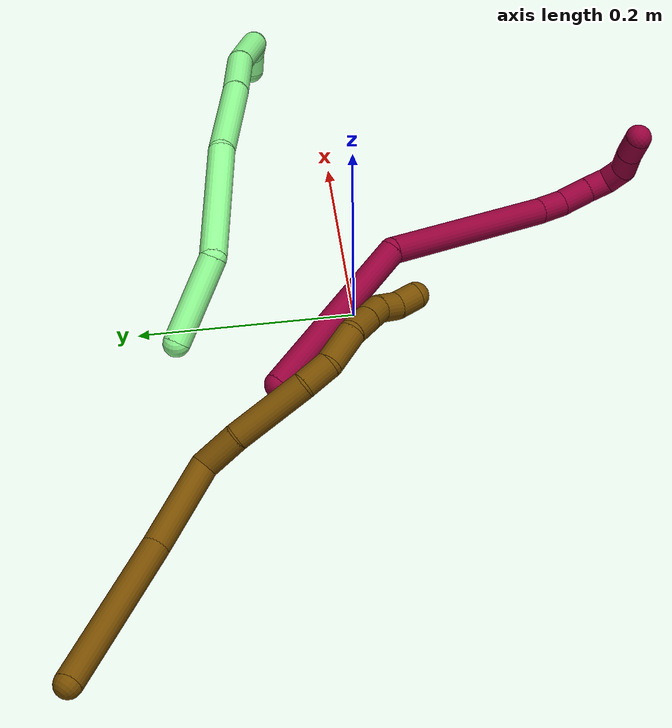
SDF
<sdf version="1.7">
 <world name="default">
  <model name="8">
   <static>0</static>
   <link name="8">
    <collision name="collision-cylinder-e_1_1_4">
     <pose>0.05096 -0.065647 -0.011742 1.74779 0.652495 0.768287</pose>
     <geometry><cylinder><radius>0.0125</radius><length>0.167861</length></cylinder></geometry>
     <surface>
      <friction><ode><mu>1.16</mu><mu2>1.16</mu2><slip1>0</slip1><slip2>0</slip2></ode></friction>
      <contact><ode><kp>1e+06</kp><kd>1</kd><max_vel>0</max_vel><min_depth>0.001</min_depth></ode></contact>
     </surface>
    </collision>
    <visual name="visual-cylinder-e_1_1_4">
     <pose>0.05096 -0.065647 -0.011742 1.74779 0.652495 0.768287</pose>
     <geometry><cylinder><radius>0.0125</radius><length>0.167861</length></cylinder></geometry>
     <material><ambient>0.584314 0 0.227451 1</ambient></material>
    </visual>
    <collision name="collision-cylinder-e_2_4_5">
     <pose>0.145843 -0.183978 -0.083026 2.41723 0.504723 1.1951</pose>
     <geometry><cylinder><radius>0.0125</radius><length>0.18166</length></cylinder></geometry>
     <surface>
      <friction><ode><mu>1.16</mu><mu2>1.16</mu2><slip1>0</slip1><slip2>0</slip2></ode></friction>
      <contact><ode><kp>1e+06</kp><kd>1</kd><max_vel>0</max_vel><min_depth>0.001</min_depth></ode></contact>
     </surface>
    </collision>
    <visual name="visual-cylinder-e_2_4_5">
     <pose>0.145843 -0.183978 -0.083026 2.41723 0.504723 1.1951</pose>
     <geometry><cylinder><radius>0.0125</radius><length>0.18166</length></cylinder></geometry>
     <material><ambient>0.584314 0 0.227451 1</ambient></material>
    </visual>
    <collision name="collision-cylinder-e_3_5_6">
     <pose>0.195927 -0.246258 -0.150803 2.27999 0.453513 0.930527</pose>
     <geometry><cylinder><radius>0.0125</radius><length>0.028132</length></cylinder></geometry>
     <surface>
      <friction><ode><mu>1.16</mu><mu2>1.16</mu2><slip1>0</slip1><slip2>0</slip2></ode></friction>
      <contact><ode><kp>1e+06</kp><kd>1</kd><max_vel>0</max_vel><min_depth>0.001</min_depth></ode></contact>
     </surface>
    </collision>
    <visual name="visual-cylinder-e_3_5_6">
     <pose>0.195927 -0.246258 -0.150803 2.27999 0.453513 0.930527</pose>
     <geometry><cylinder><radius>0.0125</radius><length>0.028132</length></cylinder></geometry>
     <material><ambient>0.584314 0 0.227451 1</ambient></material>
    </visual>
    <collision name="collision-cylinder-e_4_6_7">
     <pose>0.206439 -0.269144 -0.164651 1.97049 0.292786 0.437582</pose>
     <geometry><cylinder><radius>0.0125</radius><length>0.030137</length></cylinder></geometry>
     <surface>
      <friction><ode><mu>1.16</mu><mu2>1.16</mu2><slip1>0</slip1><slip2>0</slip2></ode></friction>
      <contact><ode><kp>1e+06</kp><kd>1</kd><max_vel>0</max_vel><min_depth>0.001</min_depth></ode></contact>
     </surface>
    </collision>
    <visual name="visual-cylinder-e_4_6_7">
     <pose>0.206439 -0.269144 -0.164651 1.97049 0.292786 0.437582</pose>
     <geometry><cylinder><radius>0.0125</radius><length>0.030137</length></cylinder></geometry>
     <material><ambient>0.584314 0 0.227451 1</ambient></material>
    </visual>
    <collision name="collision-cylinder-e_5_7_8">
     <pose>0.21296 -0.292111 -0.174124 1.95024 0.2055 0.301939</pose>
     <geometry><cylinder><radius>0.0125</radius><length>0.021285</length></cylinder></geometry>
     <surface>
      <friction><ode><mu>1.16</mu><mu2>1.16</mu2><slip1>0</slip1><slip2>0</slip2></ode></friction>
      <contact><ode><kp>1e+06</kp><kd>1</kd><max_vel>0</max_vel><min_depth>0.001</min_depth></ode></contact>
     </surface>
    </collision>
    <visual name="visual-cylinder-e_5_7_8">
     <pose>0.21296 -0.292111 -0.174124 1.95024 0.2055 0.301939</pose>
     <geometry><cylinder><radius>0.0125</radius><length>0.021285</length></cylinder></geometry>
     <material><ambient>0.584314 0 0.227451 1</ambient></material>
    </visual>
    <collision name="collision-cylinder-e_6_8_9">
     <pose>0.211809 -0.311875 -0.175955 1.3724 -0.312372 -0.256507</pose>
     <geometry><cylinder><radius>0.0125</radius><length>0.021623</length></cylinder></geometry>
     <surface>
      <friction><ode><mu>1.16</mu><mu2>1.16</mu2><slip1>0</slip1><slip2>0</slip2></ode></friction>
      <contact><ode><kp>1e+06</kp><kd>1</kd><max_vel>0</max_vel><min_depth>0.001</min_depth></ode></contact>
     </surface>
    </collision>
    <visual name="visual-cylinder-e_6_8_9">
     <pose>0.211809 -0.311875 -0.175955 1.3724 -0.312372 -0.256507</pose>
     <geometry><cylinder><radius>0.0125</radius><length>0.021623</length></cylinder></geometry>
     <material><ambient>0.584314 0 0.227451 1</ambient></material>
    </visual>
    <collision name="collision-cylinder-e_7_9_10">
     <pose>0.204605 -0.329963 -0.165808 0.778161 -0.328206 -0.135571</pose>
     <geometry><cylinder><radius>0.0125</radius><length>0.024085</length></cylinder></geometry>
     <surface>
      <friction><ode><mu>1.16</mu><mu2>1.16</mu2><slip1>0</slip1><slip2>0</slip2></ode></friction>
      <contact><ode><kp>1e+06</kp><kd>1</kd><max_vel>0</max_vel><min_depth>0.001</min_depth></ode></contact>
     </surface>
    </collision>
    <visual name="visual-cylinder-e_7_9_10">
     <pose>0.204605 -0.329963 -0.165808 0.778161 -0.328206 -0.135571</pose>
     <geometry><cylinder><radius>0.0125</radius><length>0.024085</length></cylinder></geometry>
     <material><ambient>0.584314 0 0.227451 1</ambient></material>
    </visual>
    <collision name="collision-cylinder-e_8_10_2">
     <pose>0.195885 -0.34679 -0.150093 0.860019 -0.393786 -0.182466</pose>
     <geometry><cylinder><radius>0.0125</radius><length>0.025218</length></cylinder></geometry>
     <surface>
      <friction><ode><mu>1.16</mu><mu2>1.16</mu2><slip1>0</slip1><slip2>0</slip2></ode></friction>
      <contact><ode><kp>1e+06</kp><kd>1</kd><max_vel>0</max_vel><min_depth>0.001</min_depth></ode></contact>
     </surface>
    </collision>
    <visual name="visual-cylinder-e_8_10_2">
     <pose>0.195885 -0.34679 -0.150093 0.860019 -0.393786 -0.182466</pose>
     <geometry><cylinder><radius>0.0125</radius><length>0.025218</length></cylinder></geometry>
     <material><ambient>0.584314 0 0.227451 1</ambient></material>
    </visual>
    <collision name="collision-sphere-2">
     <pose>0.191047 -0.355614 -0.142496 0 -0 0</pose>
     <geometry><sphere><radius>0.0125</radius></sphere></geometry>
     <surface>
      <friction><ode><mu>1.16</mu><mu2>1.16</mu2><slip1>0</slip1><slip2>0</slip2></ode></friction>
      <contact><ode><kp>1e+06</kp><kd>1</kd><max_vel>0</max_vel><min_depth>0.001</min_depth></ode></contact>
     </surface>
    </collision>
    <visual name="visual-sphere-2">
     <pose>0.191047 -0.355614 -0.142496 0 -0 0</pose>
     <geometry><sphere><radius>0.0125</radius></sphere></geometry>
     <material><ambient>0.584314 0 0.227451 1</ambient></material>
    </visual>
    <collision name="collision-sphere-10">
     <pose>0.200723 -0.337966 -0.15769 0 -0 0</pose>
     <geometry><sphere><radius>0.0125</radius></sphere></geometry>
     <surface>
      <friction><ode><mu>1.16</mu><mu2>1.16</mu2><slip1>0</slip1><slip2>0</slip2></ode></friction>
      <contact><ode><kp>1e+06</kp><kd>1</kd><max_vel>0</max_vel><min_depth>0.001</min_depth></ode></contact>
     </surface>
    </collision>
    <visual name="visual-sphere-10">
     <pose>0.200723 -0.337966 -0.15769 0 -0 0</pose>
     <geometry><sphere><radius>0.0125</radius></sphere></geometry>
     <material><ambient>0.584314 0 0.227451 1</ambient></material>
    </visual>
    <collision name="collision-sphere-9">
     <pose>0.208486 -0.321961 -0.173927 0 -0 0</pose>
     <geometry><sphere><radius>0.0125</radius></sphere></geometry>
     <surface>
      <friction><ode><mu>1.16</mu><mu2>1.16</mu2><slip1>0</slip1><slip2>0</slip2></ode></friction>
      <contact><ode><kp>1e+06</kp><kd>1</kd><max_vel>0</max_vel><min_depth>0.001</min_depth></ode></contact>
     </surface>
    </collision>
    <visual name="visual-sphere-9">
     <pose>0.208486 -0.321961 -0.173927 0 -0 0</pose>
     <geometry><sphere><radius>0.0125</radius></sphere></geometry>
     <material><ambient>0.584314 0 0.227451 1</ambient></material>
    </visual>
    <collision name="collision-sphere-4">
     <pose>0.101921 -0.131294 -0.023484 0 -0 0</pose>
     <geometry><sphere><radius>0.0125</radius></sphere></geometry>
     <surface>
      <friction><ode><mu>1.16</mu><mu2>1.16</mu2><slip1>0</slip1><slip2>0</slip2></ode></friction>
      <contact><ode><kp>1e+06</kp><kd>1</kd><max_vel>0</max_vel><min_depth>0.001</min_depth></ode></contact>
     </surface>
    </collision>
    <visual name="visual-sphere-4">
     <pose>0.101921 -0.131294 -0.023484 0 -0 0</pose>
     <geometry><sphere><radius>0.0125</radius></sphere></geometry>
     <material><ambient>0.584314 0 0.227451 1</ambient></material>
    </visual>
    <collision name="collision-sphere-1">
     <geometry><sphere><radius>0.0125</radius></sphere></geometry>
     <surface>
      <friction><ode><mu>1.16</mu><mu2>1.16</mu2><slip1>0</slip1><slip2>0</slip2></ode></friction>
      <contact><ode><kp>1e+06</kp><kd>1</kd><max_vel>0</max_vel><min_depth>0.001</min_depth></ode></contact>
     </surface>
    </collision>
    <visual name="visual-sphere-1">
     <geometry><sphere><radius>0.0125</radius></sphere></geometry>
     <material><ambient>0.584314 0 0.227451 1</ambient></material>
    </visual>
    <collision name="collision-sphere-8">
     <pose>0.215131 -0.301789 -0.177983 0 -0 0</pose>
     <geometry><sphere><radius>0.0125</radius></sphere></geometry>
     <surface>
      <friction><ode><mu>1.16</mu><mu2>1.16</mu2><slip1>0</slip1><slip2>0</slip2></ode></friction>
      <contact><ode><kp>1e+06</kp><kd>1</kd><max_vel>0</max_vel><min_depth>0.001</min_depth></ode></contact>
     </surface>
    </collision>
    <visual name="visual-sphere-8">
     <pose>0.215131 -0.301789 -0.177983 0 -0 0</pose>
     <geometry><sphere><radius>0.0125</radius></sphere></geometry>
     <material><ambient>0.584314 0 0.227451 1</ambient></material>
    </visual>
    <collision name="collision-sphere-5">
     <pose>0.189765 -0.236663 -0.142569 0 -0 0</pose>
     <geometry><sphere><radius>0.0125</radius></sphere></geometry>
     <surface>
      <friction><ode><mu>1.16</mu><mu2>1.16</mu2><slip1>0</slip1><slip2>0</slip2></ode></friction>
      <contact><ode><kp>1e+06</kp><kd>1</kd><max_vel>0</max_vel><min_depth>0.001</min_depth></ode></contact>
     </surface>
    </collision>
    <visual name="visual-sphere-5">
     <pose>0.189765 -0.236663 -0.142569 0 -0 0</pose>
     <geometry><sphere><radius>0.0125</radius></sphere></geometry>
     <material><ambient>0.584314 0 0.227451 1</ambient></material>
    </visual>
    <collision name="collision-sphere-6">
     <pose>0.20209 -0.255854 -0.159037 0 -0 0</pose>
     <geometry><sphere><radius>0.0125</radius></sphere></geometry>
     <surface>
      <friction><ode><mu>1.16</mu><mu2>1.16</mu2><slip1>0</slip1><slip2>0</slip2></ode></friction>
      <contact><ode><kp>1e+06</kp><kd>1</kd><max_vel>0</max_vel><min_depth>0.001</min_depth></ode></contact>
     </surface>
    </collision>
    <visual name="visual-sphere-6">
     <pose>0.20209 -0.255854 -0.159037 0 -0 0</pose>
     <geometry><sphere><radius>0.0125</radius></sphere></geometry>
     <material><ambient>0.584314 0 0.227451 1</ambient></material>
    </visual>
    <collision name="collision-sphere-7">
     <pose>0.210788 -0.282434 -0.170265 0 -0 0</pose>
     <geometry><sphere><radius>0.0125</radius></sphere></geometry>
     <surface>
      <friction><ode><mu>1.16</mu><mu2>1.16</mu2><slip1>0</slip1><slip2>0</slip2></ode></friction>
      <contact><ode><kp>1e+06</kp><kd>1</kd><max_vel>0</max_vel><min_depth>0.001</min_depth></ode></contact>
     </surface>
    </collision>
    <visual name="visual-sphere-7">
     <pose>0.210788 -0.282434 -0.170265 0 -0 0</pose>
     <geometry><sphere><radius>0.0125</radius></sphere></geometry>
     <material><ambient>0.584314 0 0.227451 1</ambient></material>
    </visual>
    <inertial>
     <pose>0.131523 -0.178267 -0.083095 0 -0 0</pose>
     <mass>0.5</mass>
     <inertia>
      <ixx>0.001055</ixx>
      <ixy>0</ixy>
      <ixz>0</ixz>
      <iyy>0.000738</iyy>
      <iyz>0</iyz>
      <izz>0.000118</izz>
     </inertia>
    </inertial>
   </link>
   <pose>-0.103893 0.080666 0.030133 -0.630784 0.173909 0.021922</pose>
  </model>
  <model name="12">
   <static>0</static>
   <link name="12">
    <collision name="collision-cylinder-e_1_1_4">
     <pose>-0.017273 -0.016962 -0.070694 2.90611 -0.233265 -1.56123</pose>
     <geometry><cylinder><radius>0.0125</radius><length>0.149448</length></cylinder></geometry>
     <surface>
      <friction><ode><mu>1.16</mu><mu2>1.16</mu2><slip1>0</slip1><slip2>0</slip2></ode></friction>
      <contact><ode><kp>1e+06</kp><kd>1</kd><max_vel>0</max_vel><min_depth>0.001</min_depth></ode></contact>
     </surface>
    </collision>
    <visual name="visual-cylinder-e_1_1_4">
     <pose>-0.017273 -0.016962 -0.070694 2.90611 -0.233265 -1.56123</pose>
     <geometry><cylinder><radius>0.0125</radius><length>0.149448</length></cylinder></geometry>
     <material><ambient>0.466667 0.301961 0 1</ambient></material>
    </visual>
    <collision name="collision-cylinder-e_2_4_5">
     <pose>-0.040957 -0.035093 -0.183368 3.11376 -0.151495 -2.77881</pose>
     <geometry><cylinder><radius>0.0125</radius><length>0.084966</length></cylinder></geometry>
     <surface>
      <friction><ode><mu>1.16</mu><mu2>1.16</mu2><slip1>0</slip1><slip2>0</slip2></ode></friction>
      <contact><ode><kp>1e+06</kp><kd>1</kd><max_vel>0</max_vel><min_depth>0.001</min_depth></ode></contact>
     </surface>
    </collision>
    <visual name="visual-cylinder-e_2_4_5">
     <pose>-0.040957 -0.035093 -0.183368 3.11376 -0.151495 -2.77881</pose>
     <geometry><cylinder><radius>0.0125</radius><length>0.084966</length></cylinder></geometry>
     <material><ambient>0.466667 0.301961 0 1</ambient></material>
    </visual>
    <collision name="collision-cylinder-e_3_5_6">
     <pose>-0.039476 -0.029756 -0.241419 -2.75693 0.427176 -1.67836</pose>
     <geometry><cylinder><radius>0.0125</radius><length>0.0381</length></cylinder></geometry>
     <surface>
      <friction><ode><mu>1.16</mu><mu2>1.16</mu2><slip1>0</slip1><slip2>0</slip2></ode></friction>
      <contact><ode><kp>1e+06</kp><kd>1</kd><max_vel>0</max_vel><min_depth>0.001</min_depth></ode></contact>
     </surface>
    </collision>
    <visual name="visual-cylinder-e_3_5_6">
     <pose>-0.039476 -0.029756 -0.241419 -2.75693 0.427176 -1.67836</pose>
     <geometry><cylinder><radius>0.0125</radius><length>0.0381</length></cylinder></geometry>
     <material><ambient>0.466667 0.301961 0 1</ambient></material>
    </visual>
    <collision name="collision-cylinder-e_4_6_7">
     <pose>-0.017365 -0.017011 -0.289805 -2.95088 0.407789 -2.27508</pose>
     <geometry><cylinder><radius>0.0125</radius><length>0.071702</length></cylinder></geometry>
     <surface>
      <friction><ode><mu>1.16</mu><mu2>1.16</mu2><slip1>0</slip1><slip2>0</slip2></ode></friction>
      <contact><ode><kp>1e+06</kp><kd>1</kd><max_vel>0</max_vel><min_depth>0.001</min_depth></ode></contact>
     </surface>
    </collision>
    <visual name="visual-cylinder-e_4_6_7">
     <pose>-0.017365 -0.017011 -0.289805 -2.95088 0.407789 -2.27508</pose>
     <geometry><cylinder><radius>0.0125</radius><length>0.071702</length></cylinder></geometry>
     <material><ambient>0.466667 0.301961 0 1</ambient></material>
    </visual>
    <collision name="collision-cylinder-e_5_7_8">
     <pose>0.00047 -0.010682 -0.335919 -3.13497 0.256402 -3.09026</pose>
     <geometry><cylinder><radius>0.0125</radius><length>0.028532</length></cylinder></geometry>
     <surface>
      <friction><ode><mu>1.16</mu><mu2>1.16</mu2><slip1>0</slip1><slip2>0</slip2></ode></friction>
      <contact><ode><kp>1e+06</kp><kd>1</kd><max_vel>0</max_vel><min_depth>0.001</min_depth></ode></contact>
     </surface>
    </collision>
    <visual name="visual-cylinder-e_5_7_8">
     <pose>0.00047 -0.010682 -0.335919 -3.13497 0.256402 -3.09026</pose>
     <geometry><cylinder><radius>0.0125</radius><length>0.028532</length></cylinder></geometry>
     <material><ambient>0.466667 0.301961 0 1</ambient></material>
    </visual>
    <collision name="collision-cylinder-e_6_8_9">
     <pose>0.002314 -0.012499 -0.368336 3.03945 -0.094495 -1.49291</pose>
     <geometry><cylinder><radius>0.0125</radius><length>0.037599</length></cylinder></geometry>
     <surface>
      <friction><ode><mu>1.16</mu><mu2>1.16</mu2><slip1>0</slip1><slip2>0</slip2></ode></friction>
      <contact><ode><kp>1e+06</kp><kd>1</kd><max_vel>0</max_vel><min_depth>0.001</min_depth></ode></contact>
     </surface>
    </collision>
    <visual name="visual-cylinder-e_6_8_9">
     <pose>0.002314 -0.012499 -0.368336 3.03945 -0.094495 -1.49291</pose>
     <geometry><cylinder><radius>0.0125</radius><length>0.037599</length></cylinder></geometry>
     <material><ambient>0.466667 0.301961 0 1</ambient></material>
    </visual>
    <collision name="collision-cylinder-e_7_9_10">
     <pose>-0.001214 -0.020507 -0.398739 2.66392 -0.131464 -0.528089</pose>
     <geometry><cylinder><radius>0.0125</radius><length>0.026771</length></cylinder></geometry>
     <surface>
      <friction><ode><mu>1.16</mu><mu2>1.16</mu2><slip1>0</slip1><slip2>0</slip2></ode></friction>
      <contact><ode><kp>1e+06</kp><kd>1</kd><max_vel>0</max_vel><min_depth>0.001</min_depth></ode></contact>
     </surface>
    </collision>
    <visual name="visual-cylinder-e_7_9_10">
     <pose>-0.001214 -0.020507 -0.398739 2.66392 -0.131464 -0.528089</pose>
     <geometry><cylinder><radius>0.0125</radius><length>0.026771</length></cylinder></geometry>
     <material><ambient>0.466667 0.301961 0 1</ambient></material>
    </visual>
    <collision name="collision-cylinder-e_8_10_11">
     <pose>-0.004429 -0.031589 -0.419872 2.65199 -0.136942 -0.535838</pose>
     <geometry><cylinder><radius>0.0125</radius><length>0.021384</length></cylinder></geometry>
     <surface>
      <friction><ode><mu>1.16</mu><mu2>1.16</mu2><slip1>0</slip1><slip2>0</slip2></ode></friction>
      <contact><ode><kp>1e+06</kp><kd>1</kd><max_vel>0</max_vel><min_depth>0.001</min_depth></ode></contact>
     </surface>
    </collision>
    <visual name="visual-cylinder-e_8_10_11">
     <pose>-0.004429 -0.031589 -0.419872 2.65199 -0.136942 -0.535838</pose>
     <geometry><cylinder><radius>0.0125</radius><length>0.021384</length></cylinder></geometry>
     <material><ambient>0.466667 0.301961 0 1</ambient></material>
    </visual>
    <collision name="collision-cylinder-e_9_11_12">
     <pose>-0.0028 -0.042223 -0.436879 2.50579 0.313656 0.895911</pose>
     <geometry><cylinder><radius>0.0125</radius><length>0.020016</length></cylinder></geometry>
     <surface>
      <friction><ode><mu>1.16</mu><mu2>1.16</mu2><slip1>0</slip1><slip2>0</slip2></ode></friction>
      <contact><ode><kp>1e+06</kp><kd>1</kd><max_vel>0</max_vel><min_depth>0.001</min_depth></ode></contact>
     </surface>
    </collision>
    <visual name="visual-cylinder-e_9_11_12">
     <pose>-0.0028 -0.042223 -0.436879 2.50579 0.313656 0.895911</pose>
     <geometry><cylinder><radius>0.0125</radius><length>0.020016</length></cylinder></geometry>
     <material><ambient>0.466667 0.301961 0 1</ambient></material>
    </visual>
    <collision name="collision-cylinder-e_10_12_2">
     <pose>0.003026 -0.050959 -0.454455 2.84016 0.257835 1.41316</pose>
     <geometry><cylinder><radius>0.0125</radius><length>0.021482</length></cylinder></geometry>
     <surface>
      <friction><ode><mu>1.16</mu><mu2>1.16</mu2><slip1>0</slip1><slip2>0</slip2></ode></friction>
      <contact><ode><kp>1e+06</kp><kd>1</kd><max_vel>0</max_vel><min_depth>0.001</min_depth></ode></contact>
     </surface>
    </collision>
    <visual name="visual-cylinder-e_10_12_2">
     <pose>0.003026 -0.050959 -0.454455 2.84016 0.257835 1.41316</pose>
     <geometry><cylinder><radius>0.0125</radius><length>0.021482</length></cylinder></geometry>
     <material><ambient>0.466667 0.301961 0 1</ambient></material>
    </visual>
    <collision name="collision-sphere-2">
     <pose>0.005765 -0.054043 -0.464373 0 -0 0</pose>
     <geometry><sphere><radius>0.0125</radius></sphere></geometry>
     <surface>
      <friction><ode><mu>1.16</mu><mu2>1.16</mu2><slip1>0</slip1><slip2>0</slip2></ode></friction>
      <contact><ode><kp>1e+06</kp><kd>1</kd><max_vel>0</max_vel><min_depth>0.001</min_depth></ode></contact>
     </surface>
    </collision>
    <visual name="visual-sphere-2">
     <pose>0.005765 -0.054043 -0.464373 0 -0 0</pose>
     <geometry><sphere><radius>0.0125</radius></sphere></geometry>
     <material><ambient>0.466667 0.301961 0 1</ambient></material>
    </visual>
    <collision name="collision-sphere-12">
     <pose>0.000288 -0.047876 -0.444538 0 -0 0</pose>
     <geometry><sphere><radius>0.0125</radius></sphere></geometry>
     <surface>
      <friction><ode><mu>1.16</mu><mu2>1.16</mu2><slip1>0</slip1><slip2>0</slip2></ode></friction>
      <contact><ode><kp>1e+06</kp><kd>1</kd><max_vel>0</max_vel><min_depth>0.001</min_depth></ode></contact>
     </surface>
    </collision>
    <visual name="visual-sphere-12">
     <pose>0.000288 -0.047876 -0.444538 0 -0 0</pose>
     <geometry><sphere><radius>0.0125</radius></sphere></geometry>
     <material><ambient>0.466667 0.301961 0 1</ambient></material>
    </visual>
    <collision name="collision-sphere-11">
     <pose>-0.005888 -0.03657 -0.429219 0 -0 0</pose>
     <geometry><sphere><radius>0.0125</radius></sphere></geometry>
     <surface>
      <friction><ode><mu>1.16</mu><mu2>1.16</mu2><slip1>0</slip1><slip2>0</slip2></ode></friction>
      <contact><ode><kp>1e+06</kp><kd>1</kd><max_vel>0</max_vel><min_depth>0.001</min_depth></ode></contact>
     </surface>
    </collision>
    <visual name="visual-sphere-11">
     <pose>-0.005888 -0.03657 -0.429219 0 -0 0</pose>
     <geometry><sphere><radius>0.0125</radius></sphere></geometry>
     <material><ambient>0.466667 0.301961 0 1</ambient></material>
    </visual>
    <collision name="collision-sphere-10">
     <pose>-0.002969 -0.026608 -0.410524 0 -0 0</pose>
     <geometry><sphere><radius>0.0125</radius></sphere></geometry>
     <surface>
      <friction><ode><mu>1.16</mu><mu2>1.16</mu2><slip1>0</slip1><slip2>0</slip2></ode></friction>
      <contact><ode><kp>1e+06</kp><kd>1</kd><max_vel>0</max_vel><min_depth>0.001</min_depth></ode></contact>
     </surface>
    </collision>
    <visual name="visual-sphere-10">
     <pose>-0.002969 -0.026608 -0.410524 0 -0 0</pose>
     <geometry><sphere><radius>0.0125</radius></sphere></geometry>
     <material><ambient>0.466667 0.301961 0 1</ambient></material>
    </visual>
    <collision name="collision-sphere-9">
     <pose>0.00054 -0.014407 -0.386954 0 -0 0</pose>
     <geometry><sphere><radius>0.0125</radius></sphere></geometry>
     <surface>
      <friction><ode><mu>1.16</mu><mu2>1.16</mu2><slip1>0</slip1><slip2>0</slip2></ode></friction>
      <contact><ode><kp>1e+06</kp><kd>1</kd><max_vel>0</max_vel><min_depth>0.001</min_depth></ode></contact>
     </surface>
    </collision>
    <visual name="visual-sphere-9">
     <pose>0.00054 -0.014407 -0.386954 0 -0 0</pose>
     <geometry><sphere><radius>0.0125</radius></sphere></geometry>
     <material><ambient>0.466667 0.301961 0 1</ambient></material>
    </visual>
    <collision name="collision-sphere-4">
     <pose>-0.034546 -0.033924 -0.141387 0 -0 0</pose>
     <geometry><sphere><radius>0.0125</radius></sphere></geometry>
     <surface>
      <friction><ode><mu>1.16</mu><mu2>1.16</mu2><slip1>0</slip1><slip2>0</slip2></ode></friction>
      <contact><ode><kp>1e+06</kp><kd>1</kd><max_vel>0</max_vel><min_depth>0.001</min_depth></ode></contact>
     </surface>
    </collision>
    <visual name="visual-sphere-4">
     <pose>-0.034546 -0.033924 -0.141387 0 -0 0</pose>
     <geometry><sphere><radius>0.0125</radius></sphere></geometry>
     <material><ambient>0.466667 0.301961 0 1</ambient></material>
    </visual>
    <collision name="collision-sphere-1">
     <geometry><sphere><radius>0.0125</radius></sphere></geometry>
     <surface>
      <friction><ode><mu>1.16</mu><mu2>1.16</mu2><slip1>0</slip1><slip2>0</slip2></ode></friction>
      <contact><ode><kp>1e+06</kp><kd>1</kd><max_vel>0</max_vel><min_depth>0.001</min_depth></ode></contact>
     </surface>
    </collision>
    <visual name="visual-sphere-1">
     <geometry><sphere><radius>0.0125</radius></sphere></geometry>
     <material><ambient>0.466667 0.301961 0 1</ambient></material>
    </visual>
    <collision name="collision-sphere-8">
     <pose>0.004088 -0.01059 -0.349718 0 -0 0</pose>
     <geometry><sphere><radius>0.0125</radius></sphere></geometry>
     <surface>
      <friction><ode><mu>1.16</mu><mu2>1.16</mu2><slip1>0</slip1><slip2>0</slip2></ode></friction>
      <contact><ode><kp>1e+06</kp><kd>1</kd><max_vel>0</max_vel><min_depth>0.001</min_depth></ode></contact>
     </surface>
    </collision>
    <visual name="visual-sphere-8">
     <pose>0.004088 -0.01059 -0.349718 0 -0 0</pose>
     <geometry><sphere><radius>0.0125</radius></sphere></geometry>
     <material><ambient>0.466667 0.301961 0 1</ambient></material>
    </visual>
    <collision name="collision-sphere-5">
     <pose>-0.047368 -0.036262 -0.225348 0 -0 0</pose>
     <geometry><sphere><radius>0.0125</radius></sphere></geometry>
     <surface>
      <friction><ode><mu>1.16</mu><mu2>1.16</mu2><slip1>0</slip1><slip2>0</slip2></ode></friction>
      <contact><ode><kp>1e+06</kp><kd>1</kd><max_vel>0</max_vel><min_depth>0.001</min_depth></ode></contact>
     </surface>
    </collision>
    <visual name="visual-sphere-5">
     <pose>-0.047368 -0.036262 -0.225348 0 -0 0</pose>
     <geometry><sphere><radius>0.0125</radius></sphere></geometry>
     <material><ambient>0.466667 0.301961 0 1</ambient></material>
    </visual>
    <collision name="collision-sphere-6">
     <pose>-0.031583 -0.02325 -0.25749 0 -0 0</pose>
     <geometry><sphere><radius>0.0125</radius></sphere></geometry>
     <surface>
      <friction><ode><mu>1.16</mu><mu2>1.16</mu2><slip1>0</slip1><slip2>0</slip2></ode></friction>
      <contact><ode><kp>1e+06</kp><kd>1</kd><max_vel>0</max_vel><min_depth>0.001</min_depth></ode></contact>
     </surface>
    </collision>
    <visual name="visual-sphere-6">
     <pose>-0.031583 -0.02325 -0.25749 0 -0 0</pose>
     <geometry><sphere><radius>0.0125</radius></sphere></geometry>
     <material><ambient>0.466667 0.301961 0 1</ambient></material>
    </visual>
    <collision name="collision-sphere-7">
     <pose>-0.003148 -0.010773 -0.322119 0 -0 0</pose>
     <geometry><sphere><radius>0.0125</radius></sphere></geometry>
     <surface>
      <friction><ode><mu>1.16</mu><mu2>1.16</mu2><slip1>0</slip1><slip2>0</slip2></ode></friction>
      <contact><ode><kp>1e+06</kp><kd>1</kd><max_vel>0</max_vel><min_depth>0.001</min_depth></ode></contact>
     </surface>
    </collision>
    <visual name="visual-sphere-7">
     <pose>-0.003148 -0.010773 -0.322119 0 -0 0</pose>
     <geometry><sphere><radius>0.0125</radius></sphere></geometry>
     <material><ambient>0.466667 0.301961 0 1</ambient></material>
    </visual>
    <inertial>
     <pose>-0.017657 -0.023618 -0.235433 0 -0 0</pose>
     <mass>0.5</mass>
     <inertia>
      <ixx>-0.000395</ixx>
      <ixy>0</ixy>
      <ixz>0</ixz>
      <iyy>-0.000247</iyy>
      <iyz>0</iyz>
      <izz>8.3e-05</izz>
     </inertia>
    </inertial>
   </link>
   <pose>-0.38637 0.277533 0.016418 1.8144 -0.074651 -2.34641</pose>
  </model>
  <model name="13">
   <static>0</static>
   <link name="13">
    <collision name="collision-cylinder-e_1_1_4">
     <pose>0.027597 -0.019368 0.023556 0.688123 0.735546 0.274384</pose>
     <geometry><cylinder><radius>0.0125</radius><length>0.082258</length></cylinder></geometry>
     <surface>
      <friction><ode><mu>1.16</mu><mu2>1.16</mu2><slip1>0</slip1><slip2>0</slip2></ode></friction>
      <contact><ode><kp>1e+06</kp><kd>1</kd><max_vel>0</max_vel><min_depth>0.001</min_depth></ode></contact>
     </surface>
    </collision>
    <visual name="visual-cylinder-e_1_1_4">
     <pose>0.027597 -0.019368 0.023556 0.688123 0.735546 0.274384</pose>
     <geometry><cylinder><radius>0.0125</radius><length>0.082258</length></cylinder></geometry>
     <material><ambient>0.564706 0.984314 0.572549 1</ambient></material>
    </visual>
    <collision name="collision-cylinder-e_2_4_5">
     <pose>0.115806 -0.048006 0.055363 0.843549 1.36884 0.701961</pose>
     <geometry><cylinder><radius>0.0125</radius><length>0.123738</length></cylinder></geometry>
     <surface>
      <friction><ode><mu>1.16</mu><mu2>1.16</mu2><slip1>0</slip1><slip2>0</slip2></ode></friction>
      <contact><ode><kp>1e+06</kp><kd>1</kd><max_vel>0</max_vel><min_depth>0.001</min_depth></ode></contact>
     </surface>
    </collision>
    <visual name="visual-cylinder-e_2_4_5">
     <pose>0.115806 -0.048006 0.055363 0.843549 1.36884 0.701961</pose>
     <geometry><cylinder><radius>0.0125</radius><length>0.123738</length></cylinder></geometry>
     <material><ambient>0.564706 0.984314 0.572549 1</ambient></material>
    </visual>
    <collision name="collision-cylinder-e_3_5_6">
     <pose>0.228727 -0.068027 0.053714 2.31498 1.29836 2.09359</pose>
     <geometry><cylinder><radius>0.0125</radius><length>0.108623</length></cylinder></geometry>
     <surface>
      <friction><ode><mu>1.16</mu><mu2>1.16</mu2><slip1>0</slip1><slip2>0</slip2></ode></friction>
      <contact><ode><kp>1e+06</kp><kd>1</kd><max_vel>0</max_vel><min_depth>0.001</min_depth></ode></contact>
     </surface>
    </collision>
    <visual name="visual-cylinder-e_3_5_6">
     <pose>0.228727 -0.068027 0.053714 2.31498 1.29836 2.09359</pose>
     <geometry><cylinder><radius>0.0125</radius><length>0.108623</length></cylinder></geometry>
     <material><ambient>0.564706 0.984314 0.572549 1</ambient></material>
    </visual>
    <collision name="collision-cylinder-e_4_6_7">
     <pose>0.312545 -0.083572 0.035908 2.59653 1.28535 2.42706</pose>
     <geometry><cylinder><radius>0.0125</radius><length>0.065678</length></cylinder></geometry>
     <surface>
      <friction><ode><mu>1.16</mu><mu2>1.16</mu2><slip1>0</slip1><slip2>0</slip2></ode></friction>
      <contact><ode><kp>1e+06</kp><kd>1</kd><max_vel>0</max_vel><min_depth>0.001</min_depth></ode></contact>
     </surface>
    </collision>
    <visual name="visual-cylinder-e_4_6_7">
     <pose>0.312545 -0.083572 0.035908 2.59653 1.28535 2.42706</pose>
     <geometry><cylinder><radius>0.0125</radius><length>0.065678</length></cylinder></geometry>
     <material><ambient>0.564706 0.984314 0.572549 1</ambient></material>
    </visual>
    <collision name="collision-cylinder-e_5_7_8">
     <pose>0.37332 -0.09766 0.014983 2.52156 1.0706 2.15109</pose>
     <geometry><cylinder><radius>0.0125</radius><length>0.0667</length></cylinder></geometry>
     <surface>
      <friction><ode><mu>1.16</mu><mu2>1.16</mu2><slip1>0</slip1><slip2>0</slip2></ode></friction>
      <contact><ode><kp>1e+06</kp><kd>1</kd><max_vel>0</max_vel><min_depth>0.001</min_depth></ode></contact>
     </surface>
    </collision>
    <visual name="visual-cylinder-e_5_7_8">
     <pose>0.37332 -0.09766 0.014983 2.52156 1.0706 2.15109</pose>
     <geometry><cylinder><radius>0.0125</radius><length>0.0667</length></cylinder></geometry>
     <material><ambient>0.564706 0.984314 0.572549 1</ambient></material>
    </visual>
    <collision name="collision-cylinder-e_6_8_9">
     <pose>0.411822 -0.106484 -0.011372 -3.10639 0.605444 -3.02899</pose>
     <geometry><cylinder><radius>0.0125</radius><length>0.032462</length></cylinder></geometry>
     <surface>
      <friction><ode><mu>1.16</mu><mu2>1.16</mu2><slip1>0</slip1><slip2>0</slip2></ode></friction>
      <contact><ode><kp>1e+06</kp><kd>1</kd><max_vel>0</max_vel><min_depth>0.001</min_depth></ode></contact>
     </surface>
    </collision>
    <visual name="visual-cylinder-e_6_8_9">
     <pose>0.411822 -0.106484 -0.011372 -3.10639 0.605444 -3.02899</pose>
     <geometry><cylinder><radius>0.0125</radius><length>0.032462</length></cylinder></geometry>
     <material><ambient>0.564706 0.984314 0.572549 1</ambient></material>
    </visual>
    <collision name="collision-cylinder-e_7_9_2">
     <pose>0.419322 -0.105098 -0.03479 -3.05098 -0.16998 2.16355</pose>
     <geometry><cylinder><radius>0.0125</radius><length>0.02054</length></cylinder></geometry>
     <surface>
      <friction><ode><mu>1.16</mu><mu2>1.16</mu2><slip1>0</slip1><slip2>0</slip2></ode></friction>
      <contact><ode><kp>1e+06</kp><kd>1</kd><max_vel>0</max_vel><min_depth>0.001</min_depth></ode></contact>
     </surface>
    </collision>
    <visual name="visual-cylinder-e_7_9_2">
     <pose>0.419322 -0.105098 -0.03479 -3.05098 -0.16998 2.16355</pose>
     <geometry><cylinder><radius>0.0125</radius><length>0.02054</length></cylinder></geometry>
     <material><ambient>0.564706 0.984314 0.572549 1</ambient></material>
    </visual>
    <collision name="collision-sphere-2">
     <pose>0.417585 -0.104182 -0.04487 0 -0 0</pose>
     <geometry><sphere><radius>0.0125</radius></sphere></geometry>
     <surface>
      <friction><ode><mu>1.16</mu><mu2>1.16</mu2><slip1>0</slip1><slip2>0</slip2></ode></friction>
      <contact><ode><kp>1e+06</kp><kd>1</kd><max_vel>0</max_vel><min_depth>0.001</min_depth></ode></contact>
     </surface>
    </collision>
    <visual name="visual-sphere-2">
     <pose>0.417585 -0.104182 -0.04487 0 -0 0</pose>
     <geometry><sphere><radius>0.0125</radius></sphere></geometry>
     <material><ambient>0.564706 0.984314 0.572549 1</ambient></material>
    </visual>
    <collision name="collision-sphere-9">
     <pose>0.421059 -0.106014 -0.024709 0 -0 0</pose>
     <geometry><sphere><radius>0.0125</radius></sphere></geometry>
     <surface>
      <friction><ode><mu>1.16</mu><mu2>1.16</mu2><slip1>0</slip1><slip2>0</slip2></ode></friction>
      <contact><ode><kp>1e+06</kp><kd>1</kd><max_vel>0</max_vel><min_depth>0.001</min_depth></ode></contact>
     </surface>
    </collision>
    <visual name="visual-sphere-9">
     <pose>0.421059 -0.106014 -0.024709 0 -0 0</pose>
     <geometry><sphere><radius>0.0125</radius></sphere></geometry>
     <material><ambient>0.564706 0.984314 0.572549 1</ambient></material>
    </visual>
    <collision name="collision-sphere-4">
     <pose>0.055195 -0.038735 0.047112 0 -0 0</pose>
     <geometry><sphere><radius>0.0125</radius></sphere></geometry>
     <surface>
      <friction><ode><mu>1.16</mu><mu2>1.16</mu2><slip1>0</slip1><slip2>0</slip2></ode></friction>
      <contact><ode><kp>1e+06</kp><kd>1</kd><max_vel>0</max_vel><min_depth>0.001</min_depth></ode></contact>
     </surface>
    </collision>
    <visual name="visual-sphere-4">
     <pose>0.055195 -0.038735 0.047112 0 -0 0</pose>
     <geometry><sphere><radius>0.0125</radius></sphere></geometry>
     <material><ambient>0.564706 0.984314 0.572549 1</ambient></material>
    </visual>
    <collision name="collision-sphere-1">
     <geometry><sphere><radius>0.0125</radius></sphere></geometry>
     <surface>
      <friction><ode><mu>1.16</mu><mu2>1.16</mu2><slip1>0</slip1><slip2>0</slip2></ode></friction>
      <contact><ode><kp>1e+06</kp><kd>1</kd><max_vel>0</max_vel><min_depth>0.001</min_depth></ode></contact>
     </surface>
    </collision>
    <visual name="visual-sphere-1">
     <geometry><sphere><radius>0.0125</radius></sphere></geometry>
     <material><ambient>0.564706 0.984314 0.572549 1</ambient></material>
    </visual>
    <collision name="collision-sphere-8">
     <pose>0.402584 -0.106954 0.001966 0 -0 0</pose>
     <geometry><sphere><radius>0.0125</radius></sphere></geometry>
     <surface>
      <friction><ode><mu>1.16</mu><mu2>1.16</mu2><slip1>0</slip1><slip2>0</slip2></ode></friction>
      <contact><ode><kp>1e+06</kp><kd>1</kd><max_vel>0</max_vel><min_depth>0.001</min_depth></ode></contact>
     </surface>
    </collision>
    <visual name="visual-sphere-8">
     <pose>0.402584 -0.106954 0.001966 0 -0 0</pose>
     <geometry><sphere><radius>0.0125</radius></sphere></geometry>
     <material><ambient>0.564706 0.984314 0.572549 1</ambient></material>
    </visual>
    <collision name="collision-sphere-5">
     <pose>0.176418 -0.057276 0.063613 0 -0 0</pose>
     <geometry><sphere><radius>0.0125</radius></sphere></geometry>
     <surface>
      <friction><ode><mu>1.16</mu><mu2>1.16</mu2><slip1>0</slip1><slip2>0</slip2></ode></friction>
      <contact><ode><kp>1e+06</kp><kd>1</kd><max_vel>0</max_vel><min_depth>0.001</min_depth></ode></contact>
     </surface>
    </collision>
    <visual name="visual-sphere-5">
     <pose>0.176418 -0.057276 0.063613 0 -0 0</pose>
     <geometry><sphere><radius>0.0125</radius></sphere></geometry>
     <material><ambient>0.564706 0.984314 0.572549 1</ambient></material>
    </visual>
    <collision name="collision-sphere-6">
     <pose>0.281035 -0.078777 0.043815 0 -0 0</pose>
     <geometry><sphere><radius>0.0125</radius></sphere></geometry>
     <surface>
      <friction><ode><mu>1.16</mu><mu2>1.16</mu2><slip1>0</slip1><slip2>0</slip2></ode></friction>
      <contact><ode><kp>1e+06</kp><kd>1</kd><max_vel>0</max_vel><min_depth>0.001</min_depth></ode></contact>
     </surface>
    </collision>
    <visual name="visual-sphere-6">
     <pose>0.281035 -0.078777 0.043815 0 -0 0</pose>
     <geometry><sphere><radius>0.0125</radius></sphere></geometry>
     <material><ambient>0.564706 0.984314 0.572549 1</ambient></material>
    </visual>
    <collision name="collision-sphere-7">
     <pose>0.344055 -0.088366 0.028001 0 -0 0</pose>
     <geometry><sphere><radius>0.0125</radius></sphere></geometry>
     <surface>
      <friction><ode><mu>1.16</mu><mu2>1.16</mu2><slip1>0</slip1><slip2>0</slip2></ode></friction>
      <contact><ode><kp>1e+06</kp><kd>1</kd><max_vel>0</max_vel><min_depth>0.001</min_depth></ode></contact>
     </surface>
    </collision>
    <visual name="visual-sphere-7">
     <pose>0.344055 -0.088366 0.028001 0 -0 0</pose>
     <geometry><sphere><radius>0.0125</radius></sphere></geometry>
     <material><ambient>0.564706 0.984314 0.572549 1</ambient></material>
    </visual>
    <inertial>
     <pose>0.217708 -0.065081 0.033794 0 -0 0</pose>
     <mass>0.5</mass>
     <inertia>
      <ixx>0.000135</ixx>
      <ixy>0</ixy>
      <ixz>0</ixz>
      <iyy>0.000428</iyy>
      <iyz>0</iyz>
      <izz>-0.000273</izz>
     </inertia>
    </inertial>
   </link>
   <pose>-0.065809 0.166018 0.055211 0.010441 -0.00536 -0.001896</pose>
  </model>
 </world>
</sdf>
